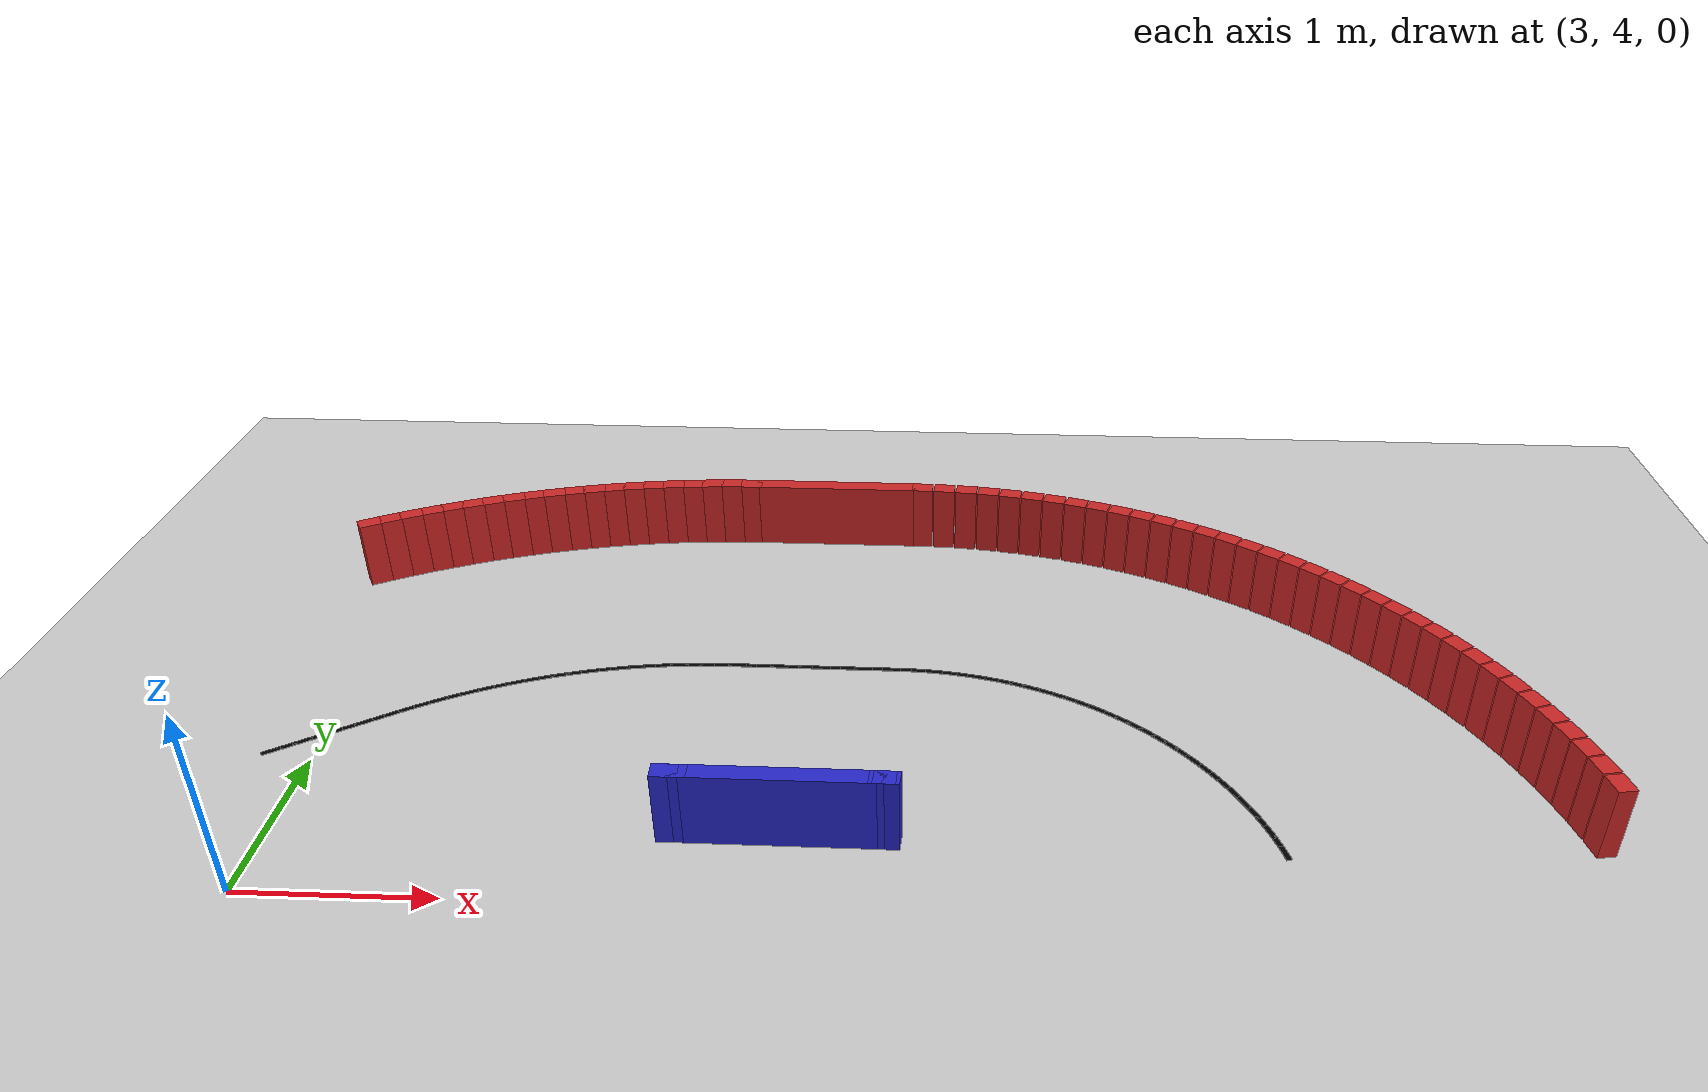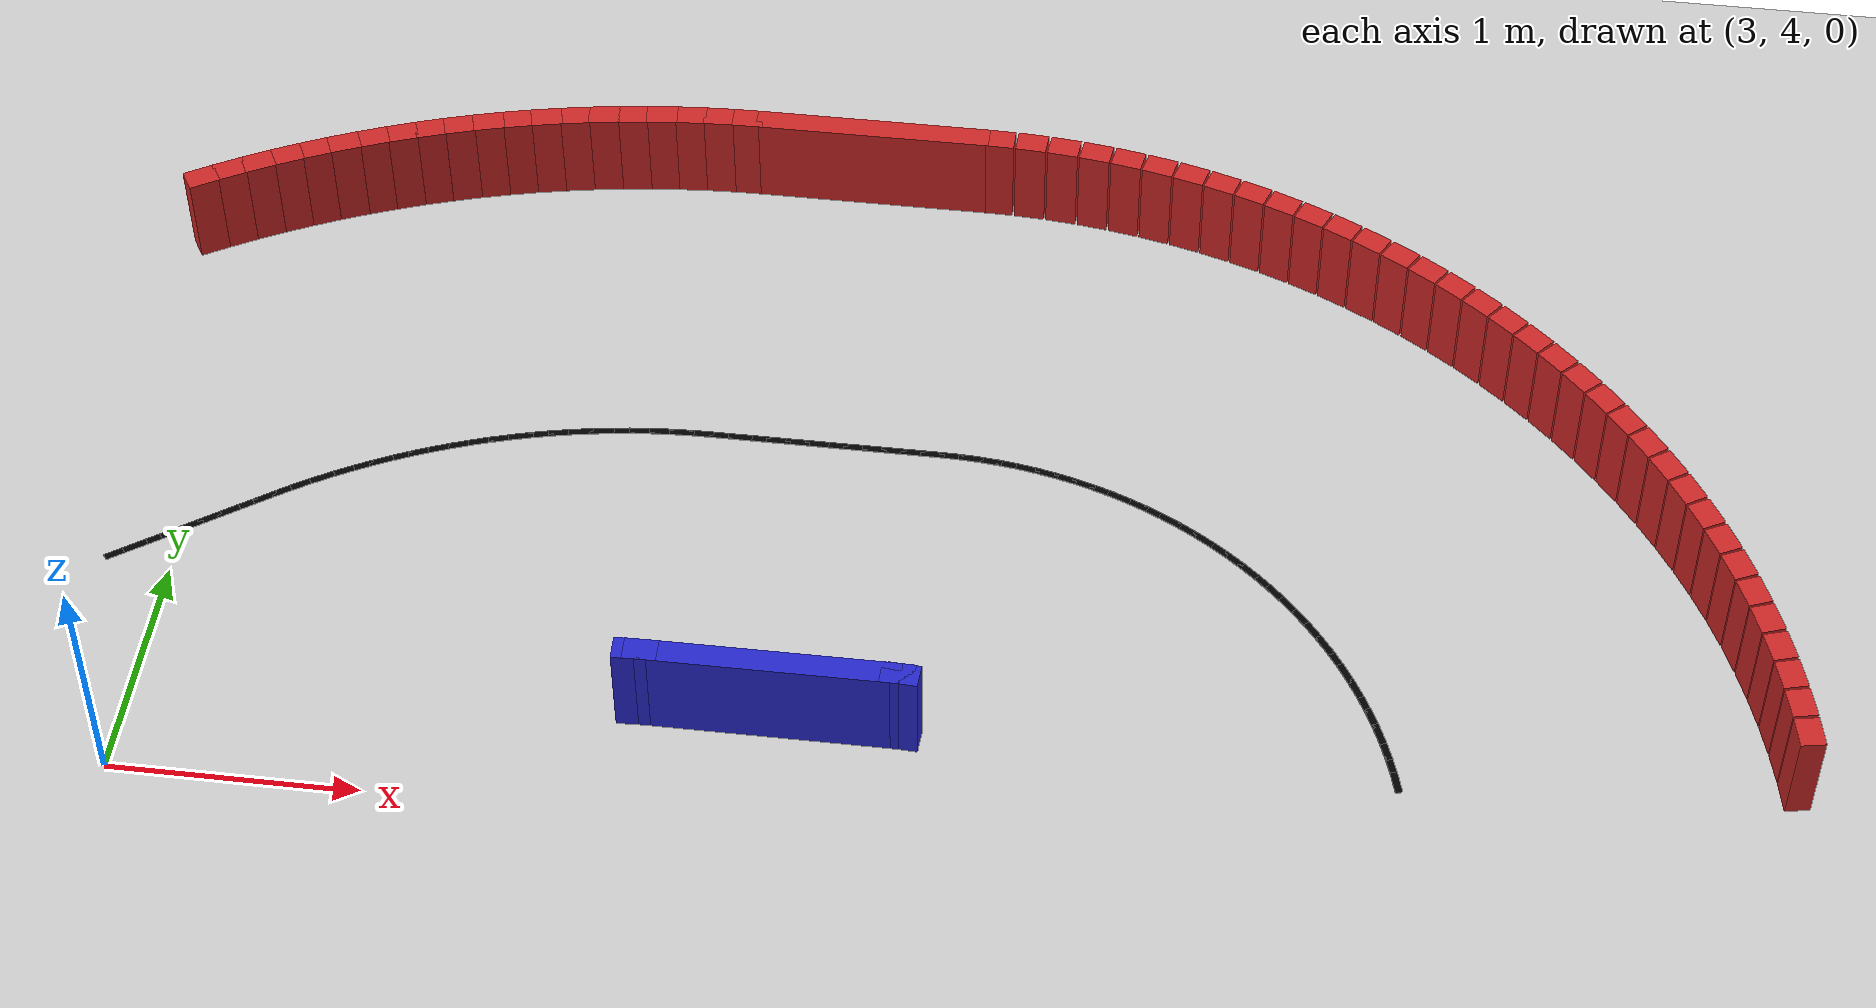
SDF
<sdf version="1.6">
 <world name="new_race_track">
  <include><uri>model://ground_plane</uri></include>
  <include><uri>model://sun</uri></include>
  <model name="race_track">
   <static>true</static>
   <link name="wall_link_277">
    <collision name="c"><geometry><box><size>0.1305 0.1 0.4</size></box></geometry></collision>
    <visual name="v">
     <geometry><box><size>0.1305 0.1 0.4</size></box></geometry>
     <material><ambient>0.15 0.15 0.8 1</ambient><diffuse>0.15 0.15 0.8 1</diffuse></material>
    </visual>
    <pose>6.0302 4.4987 0.200 0 0 3.0812</pose>
   </link>
   <link name="wall_link_278">
    <collision name="c"><geometry><box><size>0.1305 0.1 0.4</size></box></geometry></collision>
    <visual name="v">
     <geometry><box><size>0.1305 0.1 0.4</size></box></geometry>
     <material><ambient>0.15 0.15 0.8 1</ambient><diffuse>0.15 0.15 0.8 1</diffuse></material>
    </visual>
    <pose>6.0101 4.4995 0.200 0 0 3.1215</pose>
   </link>
   <link name="merged_wall_link_279">
    <pose>5.5200 4.5000 0.2000 0.0000 0.0000 3.1416</pose>
    <collision name="c"><geometry><box><size>1.0100 0.1000 0.4000</size></box></geometry></collision>
    <visual name="v">
     <geometry><box><size>1.0100 0.1000 0.4000</size></box></geometry>
     <material><ambient>0.15 0.15 0.8 1</ambient><diffuse>0.15 0.15 0.8 1</diffuse></material>
    </visual>
   </link>
   <link name="wall_link_280">
    <collision name="c"><geometry><box><size>0.1333 0.1 0.4</size></box></geometry></collision>
    <visual name="v">
     <geometry><box><size>0.1333 0.1 0.4</size></box></geometry>
     <material><ambient>0.15 0.15 0.8 1</ambient><diffuse>0.15 0.15 0.8 1</diffuse></material>
    </visual>
    <pose>5.0192 4.4996 0.200 0 0 -3.1277</pose>
   </link>
   <link name="wall_link_281">
    <collision name="c"><geometry><box><size>0.1333 0.1 0.4</size></box></geometry></collision>
    <visual name="v">
     <geometry><box><size>0.1333 0.1 0.4</size></box></geometry>
     <material><ambient>0.15 0.15 0.8 1</ambient><diffuse>0.15 0.15 0.8 1</diffuse></material>
    </visual>
    <pose>4.9776 4.4984 0.200 0 0 -3.0999</pose>
   </link>
   <link name="wall_link_656">
    <collision name="c"><geometry><box><size>0.1305 0.1 0.4</size></box></geometry></collision>
    <visual name="v">
     <geometry><box><size>0.1305 0.1 0.4</size></box></geometry>
     <material><ambient>0.8 0.15 0.15 1</ambient><diffuse>0.8 0.15 0.15 1</diffuse></material>
    </visual>
    <pose>9.4423 4.6308 0.200 0 0 1.7520</pose>
   </link>
   <link name="wall_link_657">
    <collision name="c"><geometry><box><size>0.1305 0.1 0.4</size></box></geometry></collision>
    <visual name="v">
     <geometry><box><size>0.1305 0.1 0.4</size></box></geometry>
     <material><ambient>0.8 0.15 0.15 1</ambient><diffuse>0.8 0.15 0.15 1</diffuse></material>
    </visual>
    <pose>9.4141 4.7689 0.200 0 0 1.7923</pose>
   </link>
   <link name="wall_link_658">
    <collision name="c"><geometry><box><size>0.1305 0.1 0.4</size></box></geometry></collision>
    <visual name="v">
     <geometry><box><size>0.1305 0.1 0.4</size></box></geometry>
     <material><ambient>0.8 0.15 0.15 1</ambient><diffuse>0.8 0.15 0.15 1</diffuse></material>
    </visual>
    <pose>9.3803 4.9058 0.200 0 0 1.8326</pose>
   </link>
   <link name="wall_link_659">
    <collision name="c"><geometry><box><size>0.1305 0.1 0.4</size></box></geometry></collision>
    <visual name="v">
     <geometry><box><size>0.1305 0.1 0.4</size></box></geometry>
     <material><ambient>0.8 0.15 0.15 1</ambient><diffuse>0.8 0.15 0.15 1</diffuse></material>
    </visual>
    <pose>9.3411 5.0411 0.200 0 0 1.8729</pose>
   </link>
   <link name="wall_link_660">
    <collision name="c"><geometry><box><size>0.1305 0.1 0.4</size></box></geometry></collision>
    <visual name="v">
     <geometry><box><size>0.1305 0.1 0.4</size></box></geometry>
     <material><ambient>0.8 0.15 0.15 1</ambient><diffuse>0.8 0.15 0.15 1</diffuse></material>
    </visual>
    <pose>9.2965 5.1748 0.200 0 0 1.9131</pose>
   </link>
   <link name="wall_link_661">
    <collision name="c"><geometry><box><size>0.1305 0.1 0.4</size></box></geometry></collision>
    <visual name="v">
     <geometry><box><size>0.1305 0.1 0.4</size></box></geometry>
     <material><ambient>0.8 0.15 0.15 1</ambient><diffuse>0.8 0.15 0.15 1</diffuse></material>
    </visual>
    <pose>9.2465 5.3066 0.200 0 0 1.9534</pose>
   </link>
   <link name="wall_link_662">
    <collision name="c"><geometry><box><size>0.1305 0.1 0.4</size></box></geometry></collision>
    <visual name="v">
     <geometry><box><size>0.1305 0.1 0.4</size></box></geometry>
     <material><ambient>0.8 0.15 0.15 1</ambient><diffuse>0.8 0.15 0.15 1</diffuse></material>
    </visual>
    <pose>9.1913 5.4363 0.200 0 0 1.9937</pose>
   </link>
   <link name="wall_link_663">
    <collision name="c"><geometry><box><size>0.1305 0.1 0.4</size></box></geometry></collision>
    <visual name="v">
     <geometry><box><size>0.1305 0.1 0.4</size></box></geometry>
     <material><ambient>0.8 0.15 0.15 1</ambient><diffuse>0.8 0.15 0.15 1</diffuse></material>
    </visual>
    <pose>9.1309 5.5636 0.200 0 0 2.0340</pose>
   </link>
   <link name="wall_link_664">
    <collision name="c"><geometry><box><size>0.1305 0.1 0.4</size></box></geometry></collision>
    <visual name="v">
     <geometry><box><size>0.1305 0.1 0.4</size></box></geometry>
     <material><ambient>0.8 0.15 0.15 1</ambient><diffuse>0.8 0.15 0.15 1</diffuse></material>
    </visual>
    <pose>9.0654 5.6884 0.200 0 0 2.0743</pose>
   </link>
   <link name="wall_link_665">
    <collision name="c"><geometry><box><size>0.1305 0.1 0.4</size></box></geometry></collision>
    <visual name="v">
     <geometry><box><size>0.1305 0.1 0.4</size></box></geometry>
     <material><ambient>0.8 0.15 0.15 1</ambient><diffuse>0.8 0.15 0.15 1</diffuse></material>
    </visual>
    <pose>8.9949 5.8105 0.200 0 0 2.1145</pose>
   </link>
   <link name="wall_link_666">
    <collision name="c"><geometry><box><size>0.1305 0.1 0.4</size></box></geometry></collision>
    <visual name="v">
     <geometry><box><size>0.1305 0.1 0.4</size></box></geometry>
     <material><ambient>0.8 0.15 0.15 1</ambient><diffuse>0.8 0.15 0.15 1</diffuse></material>
    </visual>
    <pose>8.9196 5.9296 0.200 0 0 2.1548</pose>
   </link>
   <link name="wall_link_667">
    <collision name="c"><geometry><box><size>0.1305 0.1 0.4</size></box></geometry></collision>
    <visual name="v">
     <geometry><box><size>0.1305 0.1 0.4</size></box></geometry>
     <material><ambient>0.8 0.15 0.15 1</ambient><diffuse>0.8 0.15 0.15 1</diffuse></material>
    </visual>
    <pose>8.8395 6.0456 0.200 0 0 2.1951</pose>
   </link>
   <link name="wall_link_668">
    <collision name="c"><geometry><box><size>0.1305 0.1 0.4</size></box></geometry></collision>
    <visual name="v">
     <geometry><box><size>0.1305 0.1 0.4</size></box></geometry>
     <material><ambient>0.8 0.15 0.15 1</ambient><diffuse>0.8 0.15 0.15 1</diffuse></material>
    </visual>
    <pose>8.7548 6.1583 0.200 0 0 2.2354</pose>
   </link>
   <link name="wall_link_669">
    <collision name="c"><geometry><box><size>0.1305 0.1 0.4</size></box></geometry></collision>
    <visual name="v">
     <geometry><box><size>0.1305 0.1 0.4</size></box></geometry>
     <material><ambient>0.8 0.15 0.15 1</ambient><diffuse>0.8 0.15 0.15 1</diffuse></material>
    </visual>
    <pose>8.6657 6.2674 0.200 0 0 2.2756</pose>
   </link>
   <link name="wall_link_670">
    <collision name="c"><geometry><box><size>0.1305 0.1 0.4</size></box></geometry></collision>
    <visual name="v">
     <geometry><box><size>0.1305 0.1 0.4</size></box></geometry>
     <material><ambient>0.8 0.15 0.15 1</ambient><diffuse>0.8 0.15 0.15 1</diffuse></material>
    </visual>
    <pose>8.5722 6.3729 0.200 0 0 2.3159</pose>
   </link>
   <link name="wall_link_671">
    <collision name="c"><geometry><box><size>0.1305 0.1 0.4</size></box></geometry></collision>
    <visual name="v">
     <geometry><box><size>0.1305 0.1 0.4</size></box></geometry>
     <material><ambient>0.8 0.15 0.15 1</ambient><diffuse>0.8 0.15 0.15 1</diffuse></material>
    </visual>
    <pose>8.4746 6.4746 0.200 0 0 2.3562</pose>
   </link>
   <link name="wall_link_672">
    <collision name="c"><geometry><box><size>0.1305 0.1 0.4</size></box></geometry></collision>
    <visual name="v">
     <geometry><box><size>0.1305 0.1 0.4</size></box></geometry>
     <material><ambient>0.8 0.15 0.15 1</ambient><diffuse>0.8 0.15 0.15 1</diffuse></material>
    </visual>
    <pose>8.3729 6.5722 0.200 0 0 2.3965</pose>
   </link>
   <link name="wall_link_673">
    <collision name="c"><geometry><box><size>0.1305 0.1 0.4</size></box></geometry></collision>
    <visual name="v">
     <geometry><box><size>0.1305 0.1 0.4</size></box></geometry>
     <material><ambient>0.8 0.15 0.15 1</ambient><diffuse>0.8 0.15 0.15 1</diffuse></material>
    </visual>
    <pose>8.2674 6.6657 0.200 0 0 2.4367</pose>
   </link>
   <link name="wall_link_674">
    <collision name="c"><geometry><box><size>0.1305 0.1 0.4</size></box></geometry></collision>
    <visual name="v">
     <geometry><box><size>0.1305 0.1 0.4</size></box></geometry>
     <material><ambient>0.8 0.15 0.15 1</ambient><diffuse>0.8 0.15 0.15 1</diffuse></material>
    </visual>
    <pose>8.1583 6.7548 0.200 0 0 2.4770</pose>
   </link>
   <link name="wall_link_675">
    <collision name="c"><geometry><box><size>0.1305 0.1 0.4</size></box></geometry></collision>
    <visual name="v">
     <geometry><box><size>0.1305 0.1 0.4</size></box></geometry>
     <material><ambient>0.8 0.15 0.15 1</ambient><diffuse>0.8 0.15 0.15 1</diffuse></material>
    </visual>
    <pose>8.0456 6.8395 0.200 0 0 2.5173</pose>
   </link>
   <link name="wall_link_676">
    <collision name="c"><geometry><box><size>0.1305 0.1 0.4</size></box></geometry></collision>
    <visual name="v">
     <geometry><box><size>0.1305 0.1 0.4</size></box></geometry>
     <material><ambient>0.8 0.15 0.15 1</ambient><diffuse>0.8 0.15 0.15 1</diffuse></material>
    </visual>
    <pose>7.9296 6.9196 0.200 0 0 2.5576</pose>
   </link>
   <link name="wall_link_677">
    <collision name="c"><geometry><box><size>0.1305 0.1 0.4</size></box></geometry></collision>
    <visual name="v">
     <geometry><box><size>0.1305 0.1 0.4</size></box></geometry>
     <material><ambient>0.8 0.15 0.15 1</ambient><diffuse>0.8 0.15 0.15 1</diffuse></material>
    </visual>
    <pose>7.8105 6.9949 0.200 0 0 2.5979</pose>
   </link>
   <link name="wall_link_678">
    <collision name="c"><geometry><box><size>0.1305 0.1 0.4</size></box></geometry></collision>
    <visual name="v">
     <geometry><box><size>0.1305 0.1 0.4</size></box></geometry>
     <material><ambient>0.8 0.15 0.15 1</ambient><diffuse>0.8 0.15 0.15 1</diffuse></material>
    </visual>
    <pose>7.6884 7.0654 0.200 0 0 2.6381</pose>
   </link>
   <link name="wall_link_679">
    <collision name="c"><geometry><box><size>0.1305 0.1 0.4</size></box></geometry></collision>
    <visual name="v">
     <geometry><box><size>0.1305 0.1 0.4</size></box></geometry>
     <material><ambient>0.8 0.15 0.15 1</ambient><diffuse>0.8 0.15 0.15 1</diffuse></material>
    </visual>
    <pose>7.5636 7.1309 0.200 0 0 2.6784</pose>
   </link>
   <link name="wall_link_680">
    <collision name="c"><geometry><box><size>0.1305 0.1 0.4</size></box></geometry></collision>
    <visual name="v">
     <geometry><box><size>0.1305 0.1 0.4</size></box></geometry>
     <material><ambient>0.8 0.15 0.15 1</ambient><diffuse>0.8 0.15 0.15 1</diffuse></material>
    </visual>
    <pose>7.4363 7.1913 0.200 0 0 2.7187</pose>
   </link>
   <link name="wall_link_681">
    <collision name="c"><geometry><box><size>0.1305 0.1 0.4</size></box></geometry></collision>
    <visual name="v">
     <geometry><box><size>0.1305 0.1 0.4</size></box></geometry>
     <material><ambient>0.8 0.15 0.15 1</ambient><diffuse>0.8 0.15 0.15 1</diffuse></material>
    </visual>
    <pose>7.3066 7.2465 0.200 0 0 2.7590</pose>
   </link>
   <link name="wall_link_682">
    <collision name="c"><geometry><box><size>0.1305 0.1 0.4</size></box></geometry></collision>
    <visual name="v">
     <geometry><box><size>0.1305 0.1 0.4</size></box></geometry>
     <material><ambient>0.8 0.15 0.15 1</ambient><diffuse>0.8 0.15 0.15 1</diffuse></material>
    </visual>
    <pose>7.1748 7.2965 0.200 0 0 2.7992</pose>
   </link>
   <link name="wall_link_683">
    <collision name="c"><geometry><box><size>0.1305 0.1 0.4</size></box></geometry></collision>
    <visual name="v">
     <geometry><box><size>0.1305 0.1 0.4</size></box></geometry>
     <material><ambient>0.8 0.15 0.15 1</ambient><diffuse>0.8 0.15 0.15 1</diffuse></material>
    </visual>
    <pose>7.0411 7.3411 0.200 0 0 2.8395</pose>
   </link>
   <link name="wall_link_684">
    <collision name="c"><geometry><box><size>0.1305 0.1 0.4</size></box></geometry></collision>
    <visual name="v">
     <geometry><box><size>0.1305 0.1 0.4</size></box></geometry>
     <material><ambient>0.8 0.15 0.15 1</ambient><diffuse>0.8 0.15 0.15 1</diffuse></material>
    </visual>
    <pose>6.9058 7.3803 0.200 0 0 2.8798</pose>
   </link>
   <link name="wall_link_685">
    <collision name="c"><geometry><box><size>0.1305 0.1 0.4</size></box></geometry></collision>
    <visual name="v">
     <geometry><box><size>0.1305 0.1 0.4</size></box></geometry>
     <material><ambient>0.8 0.15 0.15 1</ambient><diffuse>0.8 0.15 0.15 1</diffuse></material>
    </visual>
    <pose>6.7689 7.4141 0.200 0 0 2.9201</pose>
   </link>
   <link name="wall_link_686">
    <collision name="c"><geometry><box><size>0.1305 0.1 0.4</size></box></geometry></collision>
    <visual name="v">
     <geometry><box><size>0.1305 0.1 0.4</size></box></geometry>
     <material><ambient>0.8 0.15 0.15 1</ambient><diffuse>0.8 0.15 0.15 1</diffuse></material>
    </visual>
    <pose>6.6308 7.4423 0.200 0 0 2.9603</pose>
   </link>
   <link name="wall_link_687">
    <collision name="c"><geometry><box><size>0.1305 0.1 0.4</size></box></geometry></collision>
    <visual name="v">
     <geometry><box><size>0.1305 0.1 0.4</size></box></geometry>
     <material><ambient>0.8 0.15 0.15 1</ambient><diffuse>0.8 0.15 0.15 1</diffuse></material>
    </visual>
    <pose>6.4917 7.4649 0.200 0 0 3.0006</pose>
   </link>
   <link name="wall_link_688">
    <collision name="c"><geometry><box><size>0.1305 0.1 0.4</size></box></geometry></collision>
    <visual name="v">
     <geometry><box><size>0.1305 0.1 0.4</size></box></geometry>
     <material><ambient>0.8 0.15 0.15 1</ambient><diffuse>0.8 0.15 0.15 1</diffuse></material>
    </visual>
    <pose>6.3518 7.4819 0.200 0 0 3.0409</pose>
   </link>
   <link name="wall_link_689">
    <collision name="c"><geometry><box><size>0.1305 0.1 0.4</size></box></geometry></collision>
    <visual name="v">
     <geometry><box><size>0.1305 0.1 0.4</size></box></geometry>
     <material><ambient>0.8 0.15 0.15 1</ambient><diffuse>0.8 0.15 0.15 1</diffuse></material>
    </visual>
    <pose>6.2113 7.4932 0.200 0 0 3.0812</pose>
   </link>
   <link name="wall_link_690">
    <collision name="c"><geometry><box><size>0.1305 0.1 0.4</size></box></geometry></collision>
    <visual name="v">
     <geometry><box><size>0.1305 0.1 0.4</size></box></geometry>
     <material><ambient>0.8 0.15 0.15 1</ambient><diffuse>0.8 0.15 0.15 1</diffuse></material>
    </visual>
    <pose>6.0705 7.4989 0.200 0 0 3.1215</pose>
   </link>
   <link name="merged_wall_link_691">
    <pose>5.5200 7.5000 0.2000 0.0000 0.0000 3.1416</pose>
    <collision name="c"><geometry><box><size>1.0100 0.1000 0.4000</size></box></geometry></collision>
    <visual name="v">
     <geometry><box><size>1.0100 0.1000 0.4000</size></box></geometry>
     <material><ambient>0.8 0.15 0.15 1</ambient><diffuse>0.8 0.15 0.15 1</diffuse></material>
    </visual>
   </link>
   <link name="wall_link_692">
    <collision name="c"><geometry><box><size>0.1333 0.1 0.4</size></box></geometry></collision>
    <visual name="v">
     <geometry><box><size>0.1333 0.1 0.4</size></box></geometry>
     <material><ambient>0.8 0.15 0.15 1</ambient><diffuse>0.8 0.15 0.15 1</diffuse></material>
    </visual>
    <pose>4.9775 7.4993 0.200 0 0 -3.1277</pose>
   </link>
   <link name="wall_link_693">
    <collision name="c"><geometry><box><size>0.1333 0.1 0.4</size></box></geometry></collision>
    <visual name="v">
     <geometry><box><size>0.1333 0.1 0.4</size></box></geometry>
     <material><ambient>0.8 0.15 0.15 1</ambient><diffuse>0.8 0.15 0.15 1</diffuse></material>
    </visual>
    <pose>4.8526 7.4958 0.200 0 0 -3.0999</pose>
   </link>
   <link name="wall_link_694">
    <collision name="c"><geometry><box><size>0.1333 0.1 0.4</size></box></geometry></collision>
    <visual name="v">
     <geometry><box><size>0.1333 0.1 0.4</size></box></geometry>
     <material><ambient>0.8 0.15 0.15 1</ambient><diffuse>0.8 0.15 0.15 1</diffuse></material>
    </visual>
    <pose>4.7279 7.4889 0.200 0 0 -3.0722</pose>
   </link>
   <link name="wall_link_695">
    <collision name="c"><geometry><box><size>0.1333 0.1 0.4</size></box></geometry></collision>
    <visual name="v">
     <geometry><box><size>0.1333 0.1 0.4</size></box></geometry>
     <material><ambient>0.8 0.15 0.15 1</ambient><diffuse>0.8 0.15 0.15 1</diffuse></material>
    </visual>
    <pose>4.6034 7.4785 0.200 0 0 -3.0444</pose>
   </link>
   <link name="wall_link_696">
    <collision name="c"><geometry><box><size>0.1333 0.1 0.4</size></box></geometry></collision>
    <visual name="v">
     <geometry><box><size>0.1333 0.1 0.4</size></box></geometry>
     <material><ambient>0.8 0.15 0.15 1</ambient><diffuse>0.8 0.15 0.15 1</diffuse></material>
    </visual>
    <pose>4.4792 7.4646 0.200 0 0 -3.0166</pose>
   </link>
   <link name="wall_link_697">
    <collision name="c"><geometry><box><size>0.1333 0.1 0.4</size></box></geometry></collision>
    <visual name="v">
     <geometry><box><size>0.1333 0.1 0.4</size></box></geometry>
     <material><ambient>0.8 0.15 0.15 1</ambient><diffuse>0.8 0.15 0.15 1</diffuse></material>
    </visual>
    <pose>4.3555 7.4473 0.200 0 0 -2.9889</pose>
   </link>
   <link name="wall_link_698">
    <collision name="c"><geometry><box><size>0.1333 0.1 0.4</size></box></geometry></collision>
    <visual name="v">
     <geometry><box><size>0.1333 0.1 0.4</size></box></geometry>
     <material><ambient>0.8 0.15 0.15 1</ambient><diffuse>0.8 0.15 0.15 1</diffuse></material>
    </visual>
    <pose>4.2323 7.4266 0.200 0 0 -2.9611</pose>
   </link>
   <link name="wall_link_699">
    <collision name="c"><geometry><box><size>0.1333 0.1 0.4</size></box></geometry></collision>
    <visual name="v">
     <geometry><box><size>0.1333 0.1 0.4</size></box></geometry>
     <material><ambient>0.8 0.15 0.15 1</ambient><diffuse>0.8 0.15 0.15 1</diffuse></material>
    </visual>
    <pose>4.1097 7.4025 0.200 0 0 -2.9333</pose>
   </link>
   <link name="wall_link_700">
    <collision name="c"><geometry><box><size>0.1333 0.1 0.4</size></box></geometry></collision>
    <visual name="v">
     <geometry><box><size>0.1333 0.1 0.4</size></box></geometry>
     <material><ambient>0.8 0.15 0.15 1</ambient><diffuse>0.8 0.15 0.15 1</diffuse></material>
    </visual>
    <pose>3.9878 7.3750 0.200 0 0 -2.9056</pose>
   </link>
   <link name="wall_link_701">
    <collision name="c"><geometry><box><size>0.1333 0.1 0.4</size></box></geometry></collision>
    <visual name="v">
     <geometry><box><size>0.1333 0.1 0.4</size></box></geometry>
     <material><ambient>0.8 0.15 0.15 1</ambient><diffuse>0.8 0.15 0.15 1</diffuse></material>
    </visual>
    <pose>3.8668 7.3441 0.200 0 0 -2.8778</pose>
   </link>
   <link name="wall_link_702">
    <collision name="c"><geometry><box><size>0.1333 0.1 0.4</size></box></geometry></collision>
    <visual name="v">
     <geometry><box><size>0.1333 0.1 0.4</size></box></geometry>
     <material><ambient>0.8 0.15 0.15 1</ambient><diffuse>0.8 0.15 0.15 1</diffuse></material>
    </visual>
    <pose>3.7466 7.3098 0.200 0 0 -2.8500</pose>
   </link>
   <link name="wall_link_703">
    <collision name="c"><geometry><box><size>0.1333 0.1 0.4</size></box></geometry></collision>
    <visual name="v">
     <geometry><box><size>0.1333 0.1 0.4</size></box></geometry>
     <material><ambient>0.8 0.15 0.15 1</ambient><diffuse>0.8 0.15 0.15 1</diffuse></material>
    </visual>
    <pose>3.6275 7.2723 0.200 0 0 -2.8223</pose>
   </link>
   <link name="wall_link_704">
    <collision name="c"><geometry><box><size>0.1333 0.1 0.4</size></box></geometry></collision>
    <visual name="v">
     <geometry><box><size>0.1333 0.1 0.4</size></box></geometry>
     <material><ambient>0.8 0.15 0.15 1</ambient><diffuse>0.8 0.15 0.15 1</diffuse></material>
    </visual>
    <pose>3.5094 7.2314 0.200 0 0 -2.7945</pose>
   </link>
   <link name="wall_link_705">
    <collision name="c"><geometry><box><size>0.1333 0.1 0.4</size></box></geometry></collision>
    <visual name="v">
     <geometry><box><size>0.1333 0.1 0.4</size></box></geometry>
     <material><ambient>0.8 0.15 0.15 1</ambient><diffuse>0.8 0.15 0.15 1</diffuse></material>
    </visual>
    <pose>3.3925 7.1873 0.200 0 0 -2.7667</pose>
   </link>
   <link name="wall_link_706">
    <collision name="c"><geometry><box><size>0.1333 0.1 0.4</size></box></geometry></collision>
    <visual name="v">
     <geometry><box><size>0.1333 0.1 0.4</size></box></geometry>
     <material><ambient>0.8 0.15 0.15 1</ambient><diffuse>0.8 0.15 0.15 1</diffuse></material>
    </visual>
    <pose>3.2769 7.1399 0.200 0 0 -2.7390</pose>
   </link>
   <link name="wall_link_707">
    <collision name="c"><geometry><box><size>0.1333 0.1 0.4</size></box></geometry></collision>
    <visual name="v">
     <geometry><box><size>0.1333 0.1 0.4</size></box></geometry>
     <material><ambient>0.8 0.15 0.15 1</ambient><diffuse>0.8 0.15 0.15 1</diffuse></material>
    </visual>
    <pose>3.1626 7.0894 0.200 0 0 -2.7112</pose>
   </link>
   <link name="wall_link_708">
    <collision name="c"><geometry><box><size>0.1333 0.1 0.4</size></box></geometry></collision>
    <visual name="v">
     <geometry><box><size>0.1333 0.1 0.4</size></box></geometry>
     <material><ambient>0.8 0.15 0.15 1</ambient><diffuse>0.8 0.15 0.15 1</diffuse></material>
    </visual>
    <pose>3.0498 7.0357 0.200 0 0 -2.6834</pose>
   </link>
   <link name="wall_link_709">
    <collision name="c"><geometry><box><size>0.1333 0.1 0.4</size></box></geometry></collision>
    <visual name="v">
     <geometry><box><size>0.1333 0.1 0.4</size></box></geometry>
     <material><ambient>0.8 0.15 0.15 1</ambient><diffuse>0.8 0.15 0.15 1</diffuse></material>
    </visual>
    <pose>2.9386 6.9789 0.200 0 0 -2.6557</pose>
   </link>
   <link name="wall_link_710">
    <collision name="c"><geometry><box><size>0.1333 0.1 0.4</size></box></geometry></collision>
    <visual name="v">
     <geometry><box><size>0.1333 0.1 0.4</size></box></geometry>
     <material><ambient>0.8 0.15 0.15 1</ambient><diffuse>0.8 0.15 0.15 1</diffuse></material>
    </visual>
    <pose>2.8289 6.9190 0.200 0 0 -2.6279</pose>
   </link>
   <link name="wall_link_711">
    <collision name="c"><geometry><box><size>0.1333 0.1 0.4</size></box></geometry></collision>
    <visual name="v">
     <geometry><box><size>0.1333 0.1 0.4</size></box></geometry>
     <material><ambient>0.8 0.15 0.15 1</ambient><diffuse>0.8 0.15 0.15 1</diffuse></material>
    </visual>
    <pose>2.7209 6.8561 0.200 0 0 -2.6001</pose>
   </link>
   <link name="line_link_1326">
    <visual name="v">
     <geometry><box><size>0.1005 0.03 0.002</size></box></geometry>
     <material><ambient>0 0 0 1</ambient><diffuse>0 0 0 1</diffuse></material>
    </visual>
    <pose>7.9315 4.5175 0.002 0 0 1.8326</pose>
   </link>
   <link name="line_link_1327">
    <visual name="v">
     <geometry><box><size>0.1005 0.03 0.002</size></box></geometry>
     <material><ambient>0 0 0 1</ambient><diffuse>0 0 0 1</diffuse></material>
    </visual>
    <pose>7.9091 4.5949 0.002 0 0 1.8729</pose>
   </link>
   <link name="line_link_1328">
    <visual name="v">
     <geometry><box><size>0.1005 0.03 0.002</size></box></geometry>
     <material><ambient>0 0 0 1</ambient><diffuse>0 0 0 1</diffuse></material>
    </visual>
    <pose>7.8836 4.6713 0.002 0 0 1.9131</pose>
   </link>
   <link name="line_link_1329">
    <visual name="v">
     <geometry><box><size>0.1005 0.03 0.002</size></box></geometry>
     <material><ambient>0 0 0 1</ambient><diffuse>0 0 0 1</diffuse></material>
    </visual>
    <pose>7.8550 4.7466 0.002 0 0 1.9534</pose>
   </link>
   <link name="line_link_1330">
    <visual name="v">
     <geometry><box><size>0.1005 0.03 0.002</size></box></geometry>
     <material><ambient>0 0 0 1</ambient><diffuse>0 0 0 1</diffuse></material>
    </visual>
    <pose>7.8234 4.8207 0.002 0 0 1.9937</pose>
   </link>
   <link name="line_link_1331">
    <visual name="v">
     <geometry><box><size>0.1005 0.03 0.002</size></box></geometry>
     <material><ambient>0 0 0 1</ambient><diffuse>0 0 0 1</diffuse></material>
    </visual>
    <pose>7.7889 4.8934 0.002 0 0 2.0340</pose>
   </link>
   <link name="line_link_1332">
    <visual name="v">
     <geometry><box><size>0.1005 0.03 0.002</size></box></geometry>
     <material><ambient>0 0 0 1</ambient><diffuse>0 0 0 1</diffuse></material>
    </visual>
    <pose>7.7515 4.9647 0.002 0 0 2.0743</pose>
   </link>
   <link name="line_link_1333">
    <visual name="v">
     <geometry><box><size>0.1005 0.03 0.002</size></box></geometry>
     <material><ambient>0 0 0 1</ambient><diffuse>0 0 0 1</diffuse></material>
    </visual>
    <pose>7.7112 5.0345 0.002 0 0 2.1145</pose>
   </link>
   <link name="line_link_1334">
    <visual name="v">
     <geometry><box><size>0.1005 0.03 0.002</size></box></geometry>
     <material><ambient>0 0 0 1</ambient><diffuse>0 0 0 1</diffuse></material>
    </visual>
    <pose>7.6682 5.1025 0.002 0 0 2.1548</pose>
   </link>
   <link name="line_link_1335">
    <visual name="v">
     <geometry><box><size>0.1005 0.03 0.002</size></box></geometry>
     <material><ambient>0 0 0 1</ambient><diffuse>0 0 0 1</diffuse></material>
    </visual>
    <pose>7.6224 5.1688 0.002 0 0 2.1951</pose>
   </link>
   <link name="line_link_1336">
    <visual name="v">
     <geometry><box><size>0.1005 0.03 0.002</size></box></geometry>
     <material><ambient>0 0 0 1</ambient><diffuse>0 0 0 1</diffuse></material>
    </visual>
    <pose>7.5740 5.2332 0.002 0 0 2.2354</pose>
   </link>
   <link name="line_link_1337">
    <visual name="v">
     <geometry><box><size>0.1005 0.03 0.002</size></box></geometry>
     <material><ambient>0 0 0 1</ambient><diffuse>0 0 0 1</diffuse></material>
    </visual>
    <pose>7.5231 5.2956 0.002 0 0 2.2756</pose>
   </link>
   <link name="line_link_1338">
    <visual name="v">
     <geometry><box><size>0.1005 0.03 0.002</size></box></geometry>
     <material><ambient>0 0 0 1</ambient><diffuse>0 0 0 1</diffuse></material>
    </visual>
    <pose>7.4697 5.3558 0.002 0 0 2.3159</pose>
   </link>
   <link name="line_link_1339">
    <visual name="v">
     <geometry><box><size>0.1005 0.03 0.002</size></box></geometry>
     <material><ambient>0 0 0 1</ambient><diffuse>0 0 0 1</diffuse></material>
    </visual>
    <pose>7.4139 5.4139 0.002 0 0 2.3562</pose>
   </link>
   <link name="line_link_1340">
    <visual name="v">
     <geometry><box><size>0.1005 0.03 0.002</size></box></geometry>
     <material><ambient>0 0 0 1</ambient><diffuse>0 0 0 1</diffuse></material>
    </visual>
    <pose>7.3558 5.4697 0.002 0 0 2.3965</pose>
   </link>
   <link name="line_link_1341">
    <visual name="v">
     <geometry><box><size>0.1005 0.03 0.002</size></box></geometry>
     <material><ambient>0 0 0 1</ambient><diffuse>0 0 0 1</diffuse></material>
    </visual>
    <pose>7.2956 5.5231 0.002 0 0 2.4367</pose>
   </link>
   <link name="line_link_1342">
    <visual name="v">
     <geometry><box><size>0.1005 0.03 0.002</size></box></geometry>
     <material><ambient>0 0 0 1</ambient><diffuse>0 0 0 1</diffuse></material>
    </visual>
    <pose>7.2332 5.5740 0.002 0 0 2.4770</pose>
   </link>
   <link name="line_link_1343">
    <visual name="v">
     <geometry><box><size>0.1005 0.03 0.002</size></box></geometry>
     <material><ambient>0 0 0 1</ambient><diffuse>0 0 0 1</diffuse></material>
    </visual>
    <pose>7.1688 5.6224 0.002 0 0 2.5173</pose>
   </link>
   <link name="line_link_1344">
    <visual name="v">
     <geometry><box><size>0.1005 0.03 0.002</size></box></geometry>
     <material><ambient>0 0 0 1</ambient><diffuse>0 0 0 1</diffuse></material>
    </visual>
    <pose>7.1025 5.6682 0.002 0 0 2.5576</pose>
   </link>
   <link name="line_link_1345">
    <visual name="v">
     <geometry><box><size>0.1005 0.03 0.002</size></box></geometry>
     <material><ambient>0 0 0 1</ambient><diffuse>0 0 0 1</diffuse></material>
    </visual>
    <pose>7.0345 5.7112 0.002 0 0 2.5979</pose>
   </link>
   <link name="line_link_1346">
    <visual name="v">
     <geometry><box><size>0.1005 0.03 0.002</size></box></geometry>
     <material><ambient>0 0 0 1</ambient><diffuse>0 0 0 1</diffuse></material>
    </visual>
    <pose>6.9647 5.7515 0.002 0 0 2.6381</pose>
   </link>
   <link name="line_link_1347">
    <visual name="v">
     <geometry><box><size>0.1005 0.03 0.002</size></box></geometry>
     <material><ambient>0 0 0 1</ambient><diffuse>0 0 0 1</diffuse></material>
    </visual>
    <pose>6.8934 5.7889 0.002 0 0 2.6784</pose>
   </link>
   <link name="line_link_1348">
    <visual name="v">
     <geometry><box><size>0.1005 0.03 0.002</size></box></geometry>
     <material><ambient>0 0 0 1</ambient><diffuse>0 0 0 1</diffuse></material>
    </visual>
    <pose>6.8207 5.8234 0.002 0 0 2.7187</pose>
   </link>
   <link name="line_link_1349">
    <visual name="v">
     <geometry><box><size>0.1005 0.03 0.002</size></box></geometry>
     <material><ambient>0 0 0 1</ambient><diffuse>0 0 0 1</diffuse></material>
    </visual>
    <pose>6.7466 5.8550 0.002 0 0 2.7590</pose>
   </link>
   <link name="line_link_1350">
    <visual name="v">
     <geometry><box><size>0.1005 0.03 0.002</size></box></geometry>
     <material><ambient>0 0 0 1</ambient><diffuse>0 0 0 1</diffuse></material>
    </visual>
    <pose>6.6713 5.8836 0.002 0 0 2.7992</pose>
   </link>
   <link name="line_link_1351">
    <visual name="v">
     <geometry><box><size>0.1005 0.03 0.002</size></box></geometry>
     <material><ambient>0 0 0 1</ambient><diffuse>0 0 0 1</diffuse></material>
    </visual>
    <pose>6.5949 5.9091 0.002 0 0 2.8395</pose>
   </link>
   <link name="line_link_1352">
    <visual name="v">
     <geometry><box><size>0.1005 0.03 0.002</size></box></geometry>
     <material><ambient>0 0 0 1</ambient><diffuse>0 0 0 1</diffuse></material>
    </visual>
    <pose>6.5175 5.9315 0.002 0 0 2.8798</pose>
   </link>
   <link name="line_link_1353">
    <visual name="v">
     <geometry><box><size>0.1005 0.03 0.002</size></box></geometry>
     <material><ambient>0 0 0 1</ambient><diffuse>0 0 0 1</diffuse></material>
    </visual>
    <pose>6.4393 5.9507 0.002 0 0 2.9201</pose>
   </link>
   <link name="line_link_1354">
    <visual name="v">
     <geometry><box><size>0.1005 0.03 0.002</size></box></geometry>
     <material><ambient>0 0 0 1</ambient><diffuse>0 0 0 1</diffuse></material>
    </visual>
    <pose>6.3604 5.9668 0.002 0 0 2.9603</pose>
   </link>
   <link name="line_link_1355">
    <visual name="v">
     <geometry><box><size>0.1005 0.03 0.002</size></box></geometry>
     <material><ambient>0 0 0 1</ambient><diffuse>0 0 0 1</diffuse></material>
    </visual>
    <pose>6.2809 5.9798 0.002 0 0 3.0006</pose>
   </link>
   <link name="line_link_1356">
    <visual name="v">
     <geometry><box><size>0.1005 0.03 0.002</size></box></geometry>
     <material><ambient>0 0 0 1</ambient><diffuse>0 0 0 1</diffuse></material>
    </visual>
    <pose>6.2010 5.9895 0.002 0 0 3.0409</pose>
   </link>
   <link name="line_link_1357">
    <visual name="v">
     <geometry><box><size>0.1005 0.03 0.002</size></box></geometry>
     <material><ambient>0 0 0 1</ambient><diffuse>0 0 0 1</diffuse></material>
    </visual>
    <pose>6.1207 5.9959 0.002 0 0 3.0812</pose>
   </link>
   <link name="line_link_1358">
    <visual name="v">
     <geometry><box><size>0.1005 0.03 0.002</size></box></geometry>
     <material><ambient>0 0 0 1</ambient><diffuse>0 0 0 1</diffuse></material>
    </visual>
    <pose>6.0403 5.9992 0.002 0 0 3.1215</pose>
   </link>
   <link name="line_link_1359">
    <visual name="v">
     <geometry><box><size>0.1000 0.03 0.002</size></box></geometry>
     <material><ambient>0 0 0 1</ambient><diffuse>0 0 0 1</diffuse></material>
    </visual>
    <pose>5.9600 6.0000 0.002 0 0 3.1416</pose>
   </link>
   <link name="line_link_1360">
    <visual name="v">
     <geometry><box><size>0.1000 0.03 0.002</size></box></geometry>
     <material><ambient>0 0 0 1</ambient><diffuse>0 0 0 1</diffuse></material>
    </visual>
    <pose>5.8800 6.0000 0.002 0 0 3.1416</pose>
   </link>
   <link name="line_link_1361">
    <visual name="v">
     <geometry><box><size>0.1000 0.03 0.002</size></box></geometry>
     <material><ambient>0 0 0 1</ambient><diffuse>0 0 0 1</diffuse></material>
    </visual>
    <pose>5.8000 6.0000 0.002 0 0 3.1416</pose>
   </link>
   <link name="line_link_1362">
    <visual name="v">
     <geometry><box><size>0.1000 0.03 0.002</size></box></geometry>
     <material><ambient>0 0 0 1</ambient><diffuse>0 0 0 1</diffuse></material>
    </visual>
    <pose>5.7200 6.0000 0.002 0 0 3.1416</pose>
   </link>
   <link name="line_link_1363">
    <visual name="v">
     <geometry><box><size>0.1000 0.03 0.002</size></box></geometry>
     <material><ambient>0 0 0 1</ambient><diffuse>0 0 0 1</diffuse></material>
    </visual>
    <pose>5.6400 6.0000 0.002 0 0 3.1416</pose>
   </link>
   <link name="line_link_1364">
    <visual name="v">
     <geometry><box><size>0.1000 0.03 0.002</size></box></geometry>
     <material><ambient>0 0 0 1</ambient><diffuse>0 0 0 1</diffuse></material>
    </visual>
    <pose>5.5600 6.0000 0.002 0 0 3.1416</pose>
   </link>
   <link name="line_link_1365">
    <visual name="v">
     <geometry><box><size>0.1000 0.03 0.002</size></box></geometry>
     <material><ambient>0 0 0 1</ambient><diffuse>0 0 0 1</diffuse></material>
    </visual>
    <pose>5.4800 6.0000 0.002 0 0 3.1416</pose>
   </link>
   <link name="line_link_1366">
    <visual name="v">
     <geometry><box><size>0.1000 0.03 0.002</size></box></geometry>
     <material><ambient>0 0 0 1</ambient><diffuse>0 0 0 1</diffuse></material>
    </visual>
    <pose>5.4000 6.0000 0.002 0 0 3.1416</pose>
   </link>
   <link name="line_link_1367">
    <visual name="v">
     <geometry><box><size>0.1000 0.03 0.002</size></box></geometry>
     <material><ambient>0 0 0 1</ambient><diffuse>0 0 0 1</diffuse></material>
    </visual>
    <pose>5.3200 6.0000 0.002 0 0 3.1416</pose>
   </link>
   <link name="line_link_1368">
    <visual name="v">
     <geometry><box><size>0.1000 0.03 0.002</size></box></geometry>
     <material><ambient>0 0 0 1</ambient><diffuse>0 0 0 1</diffuse></material>
    </visual>
    <pose>5.2400 6.0000 0.002 0 0 3.1416</pose>
   </link>
   <link name="line_link_1369">
    <visual name="v">
     <geometry><box><size>0.1000 0.03 0.002</size></box></geometry>
     <material><ambient>0 0 0 1</ambient><diffuse>0 0 0 1</diffuse></material>
    </visual>
    <pose>5.1600 6.0000 0.002 0 0 3.1416</pose>
   </link>
   <link name="line_link_1370">
    <visual name="v">
     <geometry><box><size>0.1000 0.03 0.002</size></box></geometry>
     <material><ambient>0 0 0 1</ambient><diffuse>0 0 0 1</diffuse></material>
    </visual>
    <pose>5.0800 6.0000 0.002 0 0 3.1416</pose>
   </link>
   <link name="line_link_1371">
    <visual name="v">
     <geometry><box><size>0.1033 0.03 0.002</size></box></geometry>
     <material><ambient>0 0 0 1</ambient><diffuse>0 0 0 1</diffuse></material>
    </visual>
    <pose>4.9984 5.9994 0.002 0 0 -3.1277</pose>
   </link>
   <link name="line_link_1372">
    <visual name="v">
     <geometry><box><size>0.1033 0.03 0.002</size></box></geometry>
     <material><ambient>0 0 0 1</ambient><diffuse>0 0 0 1</diffuse></material>
    </visual>
    <pose>4.9151 5.9971 0.002 0 0 -3.0999</pose>
   </link>
   <link name="line_link_1373">
    <visual name="v">
     <geometry><box><size>0.1033 0.03 0.002</size></box></geometry>
     <material><ambient>0 0 0 1</ambient><diffuse>0 0 0 1</diffuse></material>
    </visual>
    <pose>4.8319 5.9925 0.002 0 0 -3.0722</pose>
   </link>
   <link name="line_link_1374">
    <visual name="v">
     <geometry><box><size>0.1033 0.03 0.002</size></box></geometry>
     <material><ambient>0 0 0 1</ambient><diffuse>0 0 0 1</diffuse></material>
    </visual>
    <pose>4.7489 5.9856 0.002 0 0 -3.0444</pose>
   </link>
   <link name="line_link_1375">
    <visual name="v">
     <geometry><box><size>0.1033 0.03 0.002</size></box></geometry>
     <material><ambient>0 0 0 1</ambient><diffuse>0 0 0 1</diffuse></material>
    </visual>
    <pose>4.6662 5.9763 0.002 0 0 -3.0166</pose>
   </link>
   <link name="line_link_1376">
    <visual name="v">
     <geometry><box><size>0.1033 0.03 0.002</size></box></geometry>
     <material><ambient>0 0 0 1</ambient><diffuse>0 0 0 1</diffuse></material>
    </visual>
    <pose>4.5837 5.9648 0.002 0 0 -2.9889</pose>
   </link>
   <link name="line_link_1377">
    <visual name="v">
     <geometry><box><size>0.1033 0.03 0.002</size></box></geometry>
     <material><ambient>0 0 0 1</ambient><diffuse>0 0 0 1</diffuse></material>
    </visual>
    <pose>4.5015 5.9510 0.002 0 0 -2.9611</pose>
   </link>
   <link name="line_link_1378">
    <visual name="v">
     <geometry><box><size>0.1033 0.03 0.002</size></box></geometry>
     <material><ambient>0 0 0 1</ambient><diffuse>0 0 0 1</diffuse></material>
    </visual>
    <pose>4.4198 5.9349 0.002 0 0 -2.9333</pose>
   </link>
   <link name="line_link_1379">
    <visual name="v">
     <geometry><box><size>0.1033 0.03 0.002</size></box></geometry>
     <material><ambient>0 0 0 1</ambient><diffuse>0 0 0 1</diffuse></material>
    </visual>
    <pose>4.3386 5.9166 0.002 0 0 -2.9056</pose>
   </link>
   <link name="line_link_1380">
    <visual name="v">
     <geometry><box><size>0.1033 0.03 0.002</size></box></geometry>
     <material><ambient>0 0 0 1</ambient><diffuse>0 0 0 1</diffuse></material>
    </visual>
    <pose>4.2579 5.8960 0.002 0 0 -2.8778</pose>
   </link>
   <link name="line_link_1381">
    <visual name="v">
     <geometry><box><size>0.1033 0.03 0.002</size></box></geometry>
     <material><ambient>0 0 0 1</ambient><diffuse>0 0 0 1</diffuse></material>
    </visual>
    <pose>4.1778 5.8731 0.002 0 0 -2.8500</pose>
   </link>
   <link name="line_link_1382">
    <visual name="v">
     <geometry><box><size>0.1033 0.03 0.002</size></box></geometry>
     <material><ambient>0 0 0 1</ambient><diffuse>0 0 0 1</diffuse></material>
    </visual>
    <pose>4.0983 5.8481 0.002 0 0 -2.8223</pose>
   </link>
   <link name="line_link_1383">
    <visual name="v">
     <geometry><box><size>0.1033 0.03 0.002</size></box></geometry>
     <material><ambient>0 0 0 1</ambient><diffuse>0 0 0 1</diffuse></material>
    </visual>
    <pose>4.0196 5.8208 0.002 0 0 -2.7945</pose>
   </link>
   <link name="line_link_1384">
    <visual name="v">
     <geometry><box><size>0.1033 0.03 0.002</size></box></geometry>
     <material><ambient>0 0 0 1</ambient><diffuse>0 0 0 1</diffuse></material>
    </visual>
    <pose>3.9417 5.7914 0.002 0 0 -2.7667</pose>
   </link>
   <link name="line_link_1385">
    <visual name="v">
     <geometry><box><size>0.1033 0.03 0.002</size></box></geometry>
     <material><ambient>0 0 0 1</ambient><diffuse>0 0 0 1</diffuse></material>
    </visual>
    <pose>3.8646 5.7599 0.002 0 0 -2.7390</pose>
   </link>
   <link name="line_link_1386">
    <visual name="v">
     <geometry><box><size>0.1033 0.03 0.002</size></box></geometry>
     <material><ambient>0 0 0 1</ambient><diffuse>0 0 0 1</diffuse></material>
    </visual>
    <pose>3.7885 5.7262 0.002 0 0 -2.7112</pose>
   </link>
   <link name="line_link_1387">
    <visual name="v">
     <geometry><box><size>0.1033 0.03 0.002</size></box></geometry>
     <material><ambient>0 0 0 1</ambient><diffuse>0 0 0 1</diffuse></material>
    </visual>
    <pose>3.7133 5.6904 0.002 0 0 -2.6834</pose>
   </link>
   <link name="line_link_1388">
    <visual name="v">
     <geometry><box><size>0.1033 0.03 0.002</size></box></geometry>
     <material><ambient>0 0 0 1</ambient><diffuse>0 0 0 1</diffuse></material>
    </visual>
    <pose>3.6391 5.6525 0.002 0 0 -2.6557</pose>
   </link>
   <link name="line_link_1389">
    <visual name="v">
     <geometry><box><size>0.1033 0.03 0.002</size></box></geometry>
     <material><ambient>0 0 0 1</ambient><diffuse>0 0 0 1</diffuse></material>
    </visual>
    <pose>3.5660 5.6126 0.002 0 0 -2.6279</pose>
   </link>
   <link name="line_link_1390">
    <visual name="v">
     <geometry><box><size>0.1033 0.03 0.002</size></box></geometry>
     <material><ambient>0 0 0 1</ambient><diffuse>0 0 0 1</diffuse></material>
    </visual>
    <pose>3.4940 5.5706 0.002 0 0 -2.6001</pose>
   </link>
   <link name="line_link_1391">
    <visual name="v">
     <geometry><box><size>0.1033 0.03 0.002</size></box></geometry>
     <material><ambient>0 0 0 1</ambient><diffuse>0 0 0 1</diffuse></material>
    </visual>
    <pose>3.4232 5.5267 0.002 0 0 -2.5724</pose>
   </link>
   <link name="line_link_1392">
    <visual name="v">
     <geometry><box><size>0.1033 0.03 0.002</size></box></geometry>
     <material><ambient>0 0 0 1</ambient><diffuse>0 0 0 1</diffuse></material>
    </visual>
    <pose>3.3537 5.4809 0.002 0 0 -2.5446</pose>
   </link>
   <link name="line_link_1393">
    <visual name="v">
     <geometry><box><size>0.1000 0.03 0.002</size></box></geometry>
     <material><ambient>0 0 0 1</ambient><diffuse>0 0 0 1</diffuse></material>
    </visual>
    <pose>3.2865 5.4345 0.002 0 0 -2.5307</pose>
   </link>
   <link name="line_link_1394">
    <visual name="v">
     <geometry><box><size>0.1000 0.03 0.002</size></box></geometry>
     <material><ambient>0 0 0 1</ambient><diffuse>0 0 0 1</diffuse></material>
    </visual>
    <pose>3.2210 5.3886 0.002 0 0 -2.5307</pose>
   </link>
   <link name="line_link_1395">
    <visual name="v">
     <geometry><box><size>0.1000 0.03 0.002</size></box></geometry>
     <material><ambient>0 0 0 1</ambient><diffuse>0 0 0 1</diffuse></material>
    </visual>
    <pose>3.1554 5.3427 0.002 0 0 -2.5307</pose>
   </link>
   <link name="line_link_1396">
    <visual name="v">
     <geometry><box><size>0.1000 0.03 0.002</size></box></geometry>
     <material><ambient>0 0 0 1</ambient><diffuse>0 0 0 1</diffuse></material>
    </visual>
    <pose>3.0899 5.2969 0.002 0 0 -2.5307</pose>
   </link>
   <link name="line_link_1397">
    <visual name="v">
     <geometry><box><size>0.1000 0.03 0.002</size></box></geometry>
     <material><ambient>0 0 0 1</ambient><diffuse>0 0 0 1</diffuse></material>
    </visual>
    <pose>3.0244 5.2510 0.002 0 0 -2.5307</pose>
   </link>
   <link name="line_link_1398">
    <visual name="v">
     <geometry><box><size>0.1000 0.03 0.002</size></box></geometry>
     <material><ambient>0 0 0 1</ambient><diffuse>0 0 0 1</diffuse></material>
    </visual>
    <pose>2.9588 5.2051 0.002 0 0 -2.5307</pose>
   </link>
   <link name="line_link_1399">
    <visual name="v">
     <geometry><box><size>0.1000 0.03 0.002</size></box></geometry>
     <material><ambient>0 0 0 1</ambient><diffuse>0 0 0 1</diffuse></material>
    </visual>
    <pose>2.8933 5.1592 0.002 0 0 -2.5307</pose>
   </link>
   <link name="line_link_1400">
    <visual name="v">
     <geometry><box><size>0.1000 0.03 0.002</size></box></geometry>
     <material><ambient>0 0 0 1</ambient><diffuse>0 0 0 1</diffuse></material>
    </visual>
    <pose>2.8278 5.1133 0.002 0 0 -2.5307</pose>
   </link>
   <link name="line_link_1401">
    <visual name="v">
     <geometry><box><size>0.1000 0.03 0.002</size></box></geometry>
     <material><ambient>0 0 0 1</ambient><diffuse>0 0 0 1</diffuse></material>
    </visual>
    <pose>2.7622 5.0674 0.002 0 0 -2.5307</pose>
   </link>
  </model>
 </world>
</sdf>
